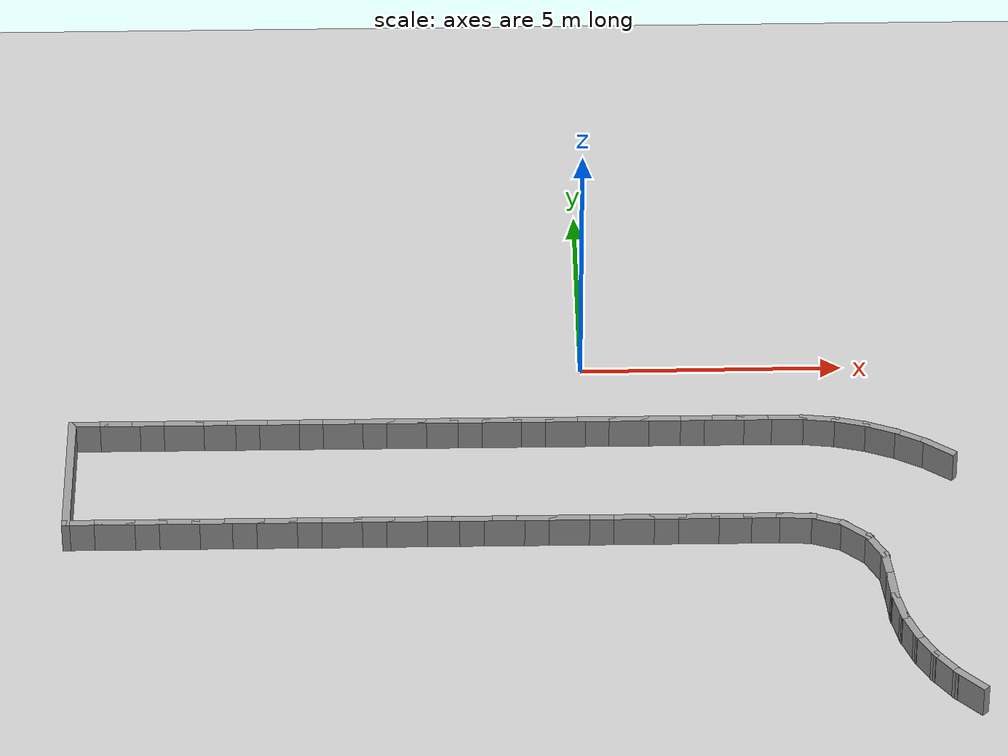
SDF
<sdf version="1.7">
 <world name="default">
  <model name="ground_plane">
   <static>1</static>
   <link name="link">
    <collision name="collision">
     <geometry><plane><normal>0 0 1</normal><size>100 100</size></plane></geometry>
     <surface><friction><ode><mu>100</mu><mu2>50</mu2></ode></friction></surface>
    </collision>
    <visual name="visual">
     <cast_shadows>0</cast_shadows>
     <geometry><plane><normal>0 0 1</normal><size>100 100</size></plane></geometry>
     <material>
      <script><uri>file://media/materials/scripts/gazebo.material</uri><name>Gazebo/Grey</name></script>
     </material>
    </visual>
   </link>
  </model>
  <model name="rand_turn_13">
   <link name="Wall_0">
    <collision name="Wall_0_Collision">
     <geometry><box><size>0.7500 0.1500 0.6000</size></box></geometry>
     <pose>0 0 0.3000 0 -0 0</pose>
    </collision>
    <visual name="Wall_0_Visual">
     <pose>0 0 0.3000 0 -0 0</pose>
     <geometry><box><size>0.7500 0.1500 0.6000</size></box></geometry>
     <material>
      <script><uri>file://media/materials/scripts/gazebo.material</uri><name>Gazebo/Grey</name></script>
      <ambient>1 1 1 1</ambient>
     </material>
    </visual>
    <pose>-9.3673 -2.2573 0 0 -0 -0.00307</pose>
   </link>
   <link name="Wall_1">
    <collision name="Wall_1_Collision">
     <geometry><box><size>0.7500 0.1500 0.6000</size></box></geometry>
     <pose>0 0 0.3000 0 -0 0</pose>
    </collision>
    <visual name="Wall_1_Visual">
     <pose>0 0 0.3000 0 -0 0</pose>
     <geometry><box><size>0.7500 0.1500 0.6000</size></box></geometry>
     <material>
      <script><uri>file://media/materials/scripts/gazebo.material</uri><name>Gazebo/Grey</name></script>
      <ambient>1 1 1 1</ambient>
     </material>
    </visual>
    <pose>-8.7673 -2.2592 0 0 -0 -0.00307</pose>
   </link>
   <link name="Wall_2">
    <collision name="Wall_2_Collision">
     <geometry><box><size>0.7500 0.1500 0.6000</size></box></geometry>
     <pose>0 0 0.3000 0 -0 0</pose>
    </collision>
    <visual name="Wall_2_Visual">
     <pose>0 0 0.3000 0 -0 0</pose>
     <geometry><box><size>0.7500 0.1500 0.6000</size></box></geometry>
     <material>
      <script><uri>file://media/materials/scripts/gazebo.material</uri><name>Gazebo/Grey</name></script>
      <ambient>1 1 1 1</ambient>
     </material>
    </visual>
    <pose>-8.1673 -2.2610 0 0 -0 -0.00307</pose>
   </link>
   <link name="Wall_3">
    <collision name="Wall_3_Collision">
     <geometry><box><size>0.7500 0.1500 0.6000</size></box></geometry>
     <pose>0 0 0.3000 0 -0 0</pose>
    </collision>
    <visual name="Wall_3_Visual">
     <pose>0 0 0.3000 0 -0 0</pose>
     <geometry><box><size>0.7500 0.1500 0.6000</size></box></geometry>
     <material>
      <script><uri>file://media/materials/scripts/gazebo.material</uri><name>Gazebo/Grey</name></script>
      <ambient>1 1 1 1</ambient>
     </material>
    </visual>
    <pose>-7.5673 -2.2629 0 0 -0 -0.00307</pose>
   </link>
   <link name="Wall_4">
    <collision name="Wall_4_Collision">
     <geometry><box><size>0.7500 0.1500 0.6000</size></box></geometry>
     <pose>0 0 0.3000 0 -0 0</pose>
    </collision>
    <visual name="Wall_4_Visual">
     <pose>0 0 0.3000 0 -0 0</pose>
     <geometry><box><size>0.7500 0.1500 0.6000</size></box></geometry>
     <material>
      <script><uri>file://media/materials/scripts/gazebo.material</uri><name>Gazebo/Grey</name></script>
      <ambient>1 1 1 1</ambient>
     </material>
    </visual>
    <pose>-6.9673 -2.2647 0 0 -0 -0.00307</pose>
   </link>
   <link name="Wall_5">
    <collision name="Wall_5_Collision">
     <geometry><box><size>0.7500 0.1500 0.6000</size></box></geometry>
     <pose>0 0 0.3000 0 -0 0</pose>
    </collision>
    <visual name="Wall_5_Visual">
     <pose>0 0 0.3000 0 -0 0</pose>
     <geometry><box><size>0.7500 0.1500 0.6000</size></box></geometry>
     <material>
      <script><uri>file://media/materials/scripts/gazebo.material</uri><name>Gazebo/Grey</name></script>
      <ambient>1 1 1 1</ambient>
     </material>
    </visual>
    <pose>-6.3673 -2.2665 0 0 -0 -0.00307</pose>
   </link>
   <link name="Wall_6">
    <collision name="Wall_6_Collision">
     <geometry><box><size>0.7500 0.1500 0.6000</size></box></geometry>
     <pose>0 0 0.3000 0 -0 0</pose>
    </collision>
    <visual name="Wall_6_Visual">
     <pose>0 0 0.3000 0 -0 0</pose>
     <geometry><box><size>0.7500 0.1500 0.6000</size></box></geometry>
     <material>
      <script><uri>file://media/materials/scripts/gazebo.material</uri><name>Gazebo/Grey</name></script>
      <ambient>1 1 1 1</ambient>
     </material>
    </visual>
    <pose>-5.7674 -2.2684 0 0 -0 -0.00307</pose>
   </link>
   <link name="Wall_7">
    <collision name="Wall_7_Collision">
     <geometry><box><size>0.7500 0.1500 0.6000</size></box></geometry>
     <pose>0 0 0.3000 0 -0 0</pose>
    </collision>
    <visual name="Wall_7_Visual">
     <pose>0 0 0.3000 0 -0 0</pose>
     <geometry><box><size>0.7500 0.1500 0.6000</size></box></geometry>
     <material>
      <script><uri>file://media/materials/scripts/gazebo.material</uri><name>Gazebo/Grey</name></script>
      <ambient>1 1 1 1</ambient>
     </material>
    </visual>
    <pose>-5.1674 -2.2702 0 0 -0 -0.00307</pose>
   </link>
   <link name="Wall_8">
    <collision name="Wall_8_Collision">
     <geometry><box><size>0.7500 0.1500 0.6000</size></box></geometry>
     <pose>0 0 0.3000 0 -0 0</pose>
    </collision>
    <visual name="Wall_8_Visual">
     <pose>0 0 0.3000 0 -0 0</pose>
     <geometry><box><size>0.7500 0.1500 0.6000</size></box></geometry>
     <material>
      <script><uri>file://media/materials/scripts/gazebo.material</uri><name>Gazebo/Grey</name></script>
      <ambient>1 1 1 1</ambient>
     </material>
    </visual>
    <pose>-4.5674 -2.2721 0 0 -0 -0.00307</pose>
   </link>
   <link name="Wall_9">
    <collision name="Wall_9_Collision">
     <geometry><box><size>0.7500 0.1500 0.6000</size></box></geometry>
     <pose>0 0 0.3000 0 -0 0</pose>
    </collision>
    <visual name="Wall_9_Visual">
     <pose>0 0 0.3000 0 -0 0</pose>
     <geometry><box><size>0.7500 0.1500 0.6000</size></box></geometry>
     <material>
      <script><uri>file://media/materials/scripts/gazebo.material</uri><name>Gazebo/Grey</name></script>
      <ambient>1 1 1 1</ambient>
     </material>
    </visual>
    <pose>-3.9674 -2.2739 0 0 -0 -0.00307</pose>
   </link>
   <link name="Wall_10">
    <collision name="Wall_10_Collision">
     <geometry><box><size>0.7500 0.1500 0.6000</size></box></geometry>
     <pose>0 0 0.3000 0 -0 0</pose>
    </collision>
    <visual name="Wall_10_Visual">
     <pose>0 0 0.3000 0 -0 0</pose>
     <geometry><box><size>0.7500 0.1500 0.6000</size></box></geometry>
     <material>
      <script><uri>file://media/materials/scripts/gazebo.material</uri><name>Gazebo/Grey</name></script>
      <ambient>1 1 1 1</ambient>
     </material>
    </visual>
    <pose>-3.3674 -2.2758 0 0 -0 -0.00307</pose>
   </link>
   <link name="Wall_11">
    <collision name="Wall_11_Collision">
     <geometry><box><size>0.7500 0.1500 0.6000</size></box></geometry>
     <pose>0 0 0.3000 0 -0 0</pose>
    </collision>
    <visual name="Wall_11_Visual">
     <pose>0 0 0.3000 0 -0 0</pose>
     <geometry><box><size>0.7500 0.1500 0.6000</size></box></geometry>
     <material>
      <script><uri>file://media/materials/scripts/gazebo.material</uri><name>Gazebo/Grey</name></script>
      <ambient>1 1 1 1</ambient>
     </material>
    </visual>
    <pose>-2.7674 -2.2776 0 0 -0 -0.00307</pose>
   </link>
   <link name="Wall_12">
    <collision name="Wall_12_Collision">
     <geometry><box><size>0.7500 0.1500 0.6000</size></box></geometry>
     <pose>0 0 0.3000 0 -0 0</pose>
    </collision>
    <visual name="Wall_12_Visual">
     <pose>0 0 0.3000 0 -0 0</pose>
     <geometry><box><size>0.7500 0.1500 0.6000</size></box></geometry>
     <material>
      <script><uri>file://media/materials/scripts/gazebo.material</uri><name>Gazebo/Grey</name></script>
      <ambient>1 1 1 1</ambient>
     </material>
    </visual>
    <pose>-2.1674 -2.2794 0 0 -0 -0.00307</pose>
   </link>
   <link name="Wall_13">
    <collision name="Wall_13_Collision">
     <geometry><box><size>0.7500 0.1500 0.6000</size></box></geometry>
     <pose>0 0 0.3000 0 -0 0</pose>
    </collision>
    <visual name="Wall_13_Visual">
     <pose>0 0 0.3000 0 -0 0</pose>
     <geometry><box><size>0.7500 0.1500 0.6000</size></box></geometry>
     <material>
      <script><uri>file://media/materials/scripts/gazebo.material</uri><name>Gazebo/Grey</name></script>
      <ambient>1 1 1 1</ambient>
     </material>
    </visual>
    <pose>-1.5674 -2.2813 0 0 -0 -0.00307</pose>
   </link>
   <link name="Wall_14">
    <collision name="Wall_14_Collision">
     <geometry><box><size>0.7500 0.1500 0.6000</size></box></geometry>
     <pose>0 0 0.3000 0 -0 0</pose>
    </collision>
    <visual name="Wall_14_Visual">
     <pose>0 0 0.3000 0 -0 0</pose>
     <geometry><box><size>0.7500 0.1500 0.6000</size></box></geometry>
     <material>
      <script><uri>file://media/materials/scripts/gazebo.material</uri><name>Gazebo/Grey</name></script>
      <ambient>1 1 1 1</ambient>
     </material>
    </visual>
    <pose>-0.9674 -2.2831 0 0 -0 -0.00307</pose>
   </link>
   <link name="Wall_15">
    <collision name="Wall_15_Collision">
     <geometry><box><size>0.7500 0.1500 0.6000</size></box></geometry>
     <pose>0 0 0.3000 0 -0 0</pose>
    </collision>
    <visual name="Wall_15_Visual">
     <pose>0 0 0.3000 0 -0 0</pose>
     <geometry><box><size>0.7500 0.1500 0.6000</size></box></geometry>
     <material>
      <script><uri>file://media/materials/scripts/gazebo.material</uri><name>Gazebo/Grey</name></script>
      <ambient>1 1 1 1</ambient>
     </material>
    </visual>
    <pose>-0.3674 -2.2850 0 0 -0 -0.00307</pose>
   </link>
   <link name="Wall_16">
    <collision name="Wall_16_Collision">
     <geometry><box><size>0.7500 0.1500 0.6000</size></box></geometry>
     <pose>0 0 0.3000 0 -0 0</pose>
    </collision>
    <visual name="Wall_16_Visual">
     <pose>0 0 0.3000 0 -0 0</pose>
     <geometry><box><size>0.7500 0.1500 0.6000</size></box></geometry>
     <material>
      <script><uri>file://media/materials/scripts/gazebo.material</uri><name>Gazebo/Grey</name></script>
      <ambient>1 1 1 1</ambient>
     </material>
    </visual>
    <pose>0.2326 -2.2868 0 0 -0 -0.00307</pose>
   </link>
   <link name="Wall_17">
    <collision name="Wall_17_Collision">
     <geometry><box><size>0.7500 0.1500 0.6000</size></box></geometry>
     <pose>0 0 0.3000 0 -0 0</pose>
    </collision>
    <visual name="Wall_17_Visual">
     <pose>0 0 0.3000 0 -0 0</pose>
     <geometry><box><size>0.7500 0.1500 0.6000</size></box></geometry>
     <material>
      <script><uri>file://media/materials/scripts/gazebo.material</uri><name>Gazebo/Grey</name></script>
      <ambient>1 1 1 1</ambient>
     </material>
    </visual>
    <pose>0.8326 -2.2887 0 0 -0 -0.00307</pose>
   </link>
   <link name="Wall_18">
    <collision name="Wall_18_Collision">
     <geometry><box><size>0.7500 0.1500 0.6000</size></box></geometry>
     <pose>0 0 0.3000 0 -0 0</pose>
    </collision>
    <visual name="Wall_18_Visual">
     <pose>0 0 0.3000 0 -0 0</pose>
     <geometry><box><size>0.7500 0.1500 0.6000</size></box></geometry>
     <material>
      <script><uri>file://media/materials/scripts/gazebo.material</uri><name>Gazebo/Grey</name></script>
      <ambient>1 1 1 1</ambient>
     </material>
    </visual>
    <pose>1.4326 -2.2905 0 0 -0 -0.00307</pose>
   </link>
   <link name="Wall_19">
    <collision name="Wall_19_Collision">
     <geometry><box><size>0.7500 0.1500 0.6000</size></box></geometry>
     <pose>0 0 0.3000 0 -0 0</pose>
    </collision>
    <visual name="Wall_19_Visual">
     <pose>0 0 0.3000 0 -0 0</pose>
     <geometry><box><size>0.7500 0.1500 0.6000</size></box></geometry>
     <material>
      <script><uri>file://media/materials/scripts/gazebo.material</uri><name>Gazebo/Grey</name></script>
      <ambient>1 1 1 1</ambient>
     </material>
    </visual>
    <pose>2.0326 -2.2923 0 0 -0 -0.00307</pose>
   </link>
   <link name="Wall_20">
    <collision name="Wall_20_Collision">
     <geometry><box><size>0.7500 0.1500 0.6000</size></box></geometry>
     <pose>0 0 0.3000 0 -0 0</pose>
    </collision>
    <visual name="Wall_20_Visual">
     <pose>0 0 0.3000 0 -0 0</pose>
     <geometry><box><size>0.7500 0.1500 0.6000</size></box></geometry>
     <material>
      <script><uri>file://media/materials/scripts/gazebo.material</uri><name>Gazebo/Grey</name></script>
      <ambient>1 1 1 1</ambient>
     </material>
    </visual>
    <pose>2.6326 -2.2942 0 0 -0 -0.00307</pose>
   </link>
   <link name="Wall_21">
    <collision name="Wall_21_Collision">
     <geometry><box><size>0.7500 0.1500 0.6000</size></box></geometry>
     <pose>0 0 0.3000 0 -0 0</pose>
    </collision>
    <visual name="Wall_21_Visual">
     <pose>0 0 0.3000 0 -0 0</pose>
     <geometry><box><size>0.7500 0.1500 0.6000</size></box></geometry>
     <material>
      <script><uri>file://media/materials/scripts/gazebo.material</uri><name>Gazebo/Grey</name></script>
      <ambient>1 1 1 1</ambient>
     </material>
    </visual>
    <pose>3.2326 -2.2960 0 0 -0 -0.00307</pose>
   </link>
   <link name="Wall_22">
    <collision name="Wall_22_Collision">
     <geometry><box><size>0.7499 0.1500 0.6000</size></box></geometry>
     <pose>0 0 0.3000 0 -0 0</pose>
    </collision>
    <visual name="Wall_22_Visual">
     <pose>0 0 0.3000 0 -0 0</pose>
     <geometry><box><size>0.7499 0.1500 0.6000</size></box></geometry>
     <material>
      <script><uri>file://media/materials/scripts/gazebo.material</uri><name>Gazebo/Grey</name></script>
      <ambient>1 1 1 1</ambient>
     </material>
    </visual>
    <pose>3.8325 -2.3028 0 0 -0 -0.01951</pose>
   </link>
   <link name="Wall_23">
    <collision name="Wall_23_Collision">
     <geometry><box><size>0.7496 0.1500 0.6000</size></box></geometry>
     <pose>0 0 0.3000 0 -0 0</pose>
    </collision>
    <visual name="Wall_23_Visual">
     <pose>0 0 0.3000 0 -0 0</pose>
     <geometry><box><size>0.7496 0.1500 0.6000</size></box></geometry>
     <material>
      <script><uri>file://media/materials/scripts/gazebo.material</uri><name>Gazebo/Grey</name></script>
      <ambient>1 1 1 1</ambient>
     </material>
    </visual>
    <pose>4.4295 -2.3487 0 0 -0 -0.13390</pose>
   </link>
   <link name="Wall_24">
    <collision name="Wall_24_Collision">
     <geometry><box><size>0.7496 0.1500 0.6000</size></box></geometry>
     <pose>0 0 0.3000 0 -0 0</pose>
    </collision>
    <visual name="Wall_24_Visual">
     <pose>0 0 0.3000 0 -0 0</pose>
     <geometry><box><size>0.7496 0.1500 0.6000</size></box></geometry>
     <material>
      <script><uri>file://media/materials/scripts/gazebo.material</uri><name>Gazebo/Grey</name></script>
      <ambient>1 1 1 1</ambient>
     </material>
    </visual>
    <pose>5.0159 -2.4671 0 0 -0 -0.26449</pose>
   </link>
   <link name="Wall_25">
    <collision name="Wall_25_Collision">
     <geometry><box><size>0.7496 0.1500 0.6000</size></box></geometry>
     <pose>0 0 0.3000 0 -0 0</pose>
    </collision>
    <visual name="Wall_25_Visual">
     <pose>0 0 0.3000 0 -0 0</pose>
     <geometry><box><size>0.7496 0.1500 0.6000</size></box></geometry>
     <material>
      <script><uri>file://media/materials/scripts/gazebo.material</uri><name>Gazebo/Grey</name></script>
      <ambient>1 1 1 1</ambient>
     </material>
    </visual>
    <pose>5.5820 -2.6608 0 0 -0 -0.39508</pose>
   </link>
   <link name="Wall_26">
    <collision name="Wall_26_Collision">
     <geometry><box><size>0.7495 0.1500 0.6000</size></box></geometry>
     <pose>0 0 0.3000 0 -0 0</pose>
    </collision>
    <visual name="Wall_26_Visual">
     <pose>0 0 0.3000 0 -0 0</pose>
     <geometry><box><size>0.7495 0.1500 0.6000</size></box></geometry>
     <material>
      <script><uri>file://media/materials/scripts/gazebo.material</uri><name>Gazebo/Grey</name></script>
      <ambient>1 1 1 1</ambient>
     </material>
    </visual>
    <pose>6.1180 -2.9266 0 0 -0 -0.52568</pose>
   </link>
   <link name="Wall_27">
    <collision name="Wall_27_Collision">
     <geometry><box><size>0.7495 0.1500 0.6000</size></box></geometry>
     <pose>0 0 0.3000 0 -0 0</pose>
    </collision>
    <visual name="Wall_27_Visual">
     <pose>0 0 0.3000 0 -0 0</pose>
     <geometry><box><size>0.7495 0.1500 0.6000</size></box></geometry>
     <material>
      <script><uri>file://media/materials/scripts/gazebo.material</uri><name>Gazebo/Grey</name></script>
      <ambient>1 1 1 1</ambient>
     </material>
    </visual>
    <pose>6.6148 -3.2600 0 0 -0 -0.65627</pose>
   </link>
   <link name="Wall_53">
    <collision name="Wall_53_Collision">
     <geometry><box><size>0.7500 0.1500 0.6000</size></box></geometry>
     <pose>0 0 0.3000 0 -0 0</pose>
    </collision>
    <visual name="Wall_53_Visual">
     <pose>0 0 0.3000 0 -0 0</pose>
     <geometry><box><size>0.7500 0.1500 0.6000</size></box></geometry>
     <material>
      <script><uri>file://media/materials/scripts/gazebo.material</uri><name>Gazebo/Grey</name></script>
      <ambient>1 1 1 1</ambient>
     </material>
    </visual>
    <pose>-9.3765 -5.2283 0 0 -0 -0.00307</pose>
   </link>
   <link name="Wall_54">
    <collision name="Wall_54_Collision">
     <geometry><box><size>0.7500 0.1500 0.6000</size></box></geometry>
     <pose>0 0 0.3000 0 -0 0</pose>
    </collision>
    <visual name="Wall_54_Visual">
     <pose>0 0 0.3000 0 -0 0</pose>
     <geometry><box><size>0.7500 0.1500 0.6000</size></box></geometry>
     <material>
      <script><uri>file://media/materials/scripts/gazebo.material</uri><name>Gazebo/Grey</name></script>
      <ambient>1 1 1 1</ambient>
     </material>
    </visual>
    <pose>-8.7765 -5.2302 0 0 -0 -0.00307</pose>
   </link>
   <link name="Wall_55">
    <collision name="Wall_55_Collision">
     <geometry><box><size>0.7500 0.1500 0.6000</size></box></geometry>
     <pose>0 0 0.3000 0 -0 0</pose>
    </collision>
    <visual name="Wall_55_Visual">
     <pose>0 0 0.3000 0 -0 0</pose>
     <geometry><box><size>0.7500 0.1500 0.6000</size></box></geometry>
     <material>
      <script><uri>file://media/materials/scripts/gazebo.material</uri><name>Gazebo/Grey</name></script>
      <ambient>1 1 1 1</ambient>
     </material>
    </visual>
    <pose>-8.1765 -5.2320 0 0 -0 -0.00307</pose>
   </link>
   <link name="Wall_56">
    <collision name="Wall_56_Collision">
     <geometry><box><size>0.7500 0.1500 0.6000</size></box></geometry>
     <pose>0 0 0.3000 0 -0 0</pose>
    </collision>
    <visual name="Wall_56_Visual">
     <pose>0 0 0.3000 0 -0 0</pose>
     <geometry><box><size>0.7500 0.1500 0.6000</size></box></geometry>
     <material>
      <script><uri>file://media/materials/scripts/gazebo.material</uri><name>Gazebo/Grey</name></script>
      <ambient>1 1 1 1</ambient>
     </material>
    </visual>
    <pose>-7.5765 -5.2339 0 0 -0 -0.00307</pose>
   </link>
   <link name="Wall_57">
    <collision name="Wall_57_Collision">
     <geometry><box><size>0.7500 0.1500 0.6000</size></box></geometry>
     <pose>0 0 0.3000 0 -0 0</pose>
    </collision>
    <visual name="Wall_57_Visual">
     <pose>0 0 0.3000 0 -0 0</pose>
     <geometry><box><size>0.7500 0.1500 0.6000</size></box></geometry>
     <material>
      <script><uri>file://media/materials/scripts/gazebo.material</uri><name>Gazebo/Grey</name></script>
      <ambient>1 1 1 1</ambient>
     </material>
    </visual>
    <pose>-6.9765 -5.2357 0 0 -0 -0.00307</pose>
   </link>
   <link name="Wall_58">
    <collision name="Wall_58_Collision">
     <geometry><box><size>0.7500 0.1500 0.6000</size></box></geometry>
     <pose>0 0 0.3000 0 -0 0</pose>
    </collision>
    <visual name="Wall_58_Visual">
     <pose>0 0 0.3000 0 -0 0</pose>
     <geometry><box><size>0.7500 0.1500 0.6000</size></box></geometry>
     <material>
      <script><uri>file://media/materials/scripts/gazebo.material</uri><name>Gazebo/Grey</name></script>
      <ambient>1 1 1 1</ambient>
     </material>
    </visual>
    <pose>-6.3765 -5.2375 0 0 -0 -0.00307</pose>
   </link>
   <link name="Wall_59">
    <collision name="Wall_59_Collision">
     <geometry><box><size>0.7500 0.1500 0.6000</size></box></geometry>
     <pose>0 0 0.3000 0 -0 0</pose>
    </collision>
    <visual name="Wall_59_Visual">
     <pose>0 0 0.3000 0 -0 0</pose>
     <geometry><box><size>0.7500 0.1500 0.6000</size></box></geometry>
     <material>
      <script><uri>file://media/materials/scripts/gazebo.material</uri><name>Gazebo/Grey</name></script>
      <ambient>1 1 1 1</ambient>
     </material>
    </visual>
    <pose>-5.7765 -5.2394 0 0 -0 -0.00307</pose>
   </link>
   <link name="Wall_60">
    <collision name="Wall_60_Collision">
     <geometry><box><size>0.7500 0.1500 0.6000</size></box></geometry>
     <pose>0 0 0.3000 0 -0 0</pose>
    </collision>
    <visual name="Wall_60_Visual">
     <pose>0 0 0.3000 0 -0 0</pose>
     <geometry><box><size>0.7500 0.1500 0.6000</size></box></geometry>
     <material>
      <script><uri>file://media/materials/scripts/gazebo.material</uri><name>Gazebo/Grey</name></script>
      <ambient>1 1 1 1</ambient>
     </material>
    </visual>
    <pose>-5.1765 -5.2412 0 0 -0 -0.00307</pose>
   </link>
   <link name="Wall_61">
    <collision name="Wall_61_Collision">
     <geometry><box><size>0.7500 0.1500 0.6000</size></box></geometry>
     <pose>0 0 0.3000 0 -0 0</pose>
    </collision>
    <visual name="Wall_61_Visual">
     <pose>0 0 0.3000 0 -0 0</pose>
     <geometry><box><size>0.7500 0.1500 0.6000</size></box></geometry>
     <material>
      <script><uri>file://media/materials/scripts/gazebo.material</uri><name>Gazebo/Grey</name></script>
      <ambient>1 1 1 1</ambient>
     </material>
    </visual>
    <pose>-4.5765 -5.2431 0 0 -0 -0.00307</pose>
   </link>
   <link name="Wall_62">
    <collision name="Wall_62_Collision">
     <geometry><box><size>0.7500 0.1500 0.6000</size></box></geometry>
     <pose>0 0 0.3000 0 -0 0</pose>
    </collision>
    <visual name="Wall_62_Visual">
     <pose>0 0 0.3000 0 -0 0</pose>
     <geometry><box><size>0.7500 0.1500 0.6000</size></box></geometry>
     <material>
      <script><uri>file://media/materials/scripts/gazebo.material</uri><name>Gazebo/Grey</name></script>
      <ambient>1 1 1 1</ambient>
     </material>
    </visual>
    <pose>-3.9765 -5.2449 0 0 -0 -0.00307</pose>
   </link>
   <link name="Wall_63">
    <collision name="Wall_63_Collision">
     <geometry><box><size>0.7500 0.1500 0.6000</size></box></geometry>
     <pose>0 0 0.3000 0 -0 0</pose>
    </collision>
    <visual name="Wall_63_Visual">
     <pose>0 0 0.3000 0 -0 0</pose>
     <geometry><box><size>0.7500 0.1500 0.6000</size></box></geometry>
     <material>
      <script><uri>file://media/materials/scripts/gazebo.material</uri><name>Gazebo/Grey</name></script>
      <ambient>1 1 1 1</ambient>
     </material>
    </visual>
    <pose>-3.3765 -5.2468 0 0 -0 -0.00307</pose>
   </link>
   <link name="Wall_64">
    <collision name="Wall_64_Collision">
     <geometry><box><size>0.7500 0.1500 0.6000</size></box></geometry>
     <pose>0 0 0.3000 0 -0 0</pose>
    </collision>
    <visual name="Wall_64_Visual">
     <pose>0 0 0.3000 0 -0 0</pose>
     <geometry><box><size>0.7500 0.1500 0.6000</size></box></geometry>
     <material>
      <script><uri>file://media/materials/scripts/gazebo.material</uri><name>Gazebo/Grey</name></script>
      <ambient>1 1 1 1</ambient>
     </material>
    </visual>
    <pose>-2.7765 -5.2486 0 0 -0 -0.00307</pose>
   </link>
   <link name="Wall_65">
    <collision name="Wall_65_Collision">
     <geometry><box><size>0.7500 0.1500 0.6000</size></box></geometry>
     <pose>0 0 0.3000 0 -0 0</pose>
    </collision>
    <visual name="Wall_65_Visual">
     <pose>0 0 0.3000 0 -0 0</pose>
     <geometry><box><size>0.7500 0.1500 0.6000</size></box></geometry>
     <material>
      <script><uri>file://media/materials/scripts/gazebo.material</uri><name>Gazebo/Grey</name></script>
      <ambient>1 1 1 1</ambient>
     </material>
    </visual>
    <pose>-2.1765 -5.2504 0 0 -0 -0.00307</pose>
   </link>
   <link name="Wall_66">
    <collision name="Wall_66_Collision">
     <geometry><box><size>0.7500 0.1500 0.6000</size></box></geometry>
     <pose>0 0 0.3000 0 -0 0</pose>
    </collision>
    <visual name="Wall_66_Visual">
     <pose>0 0 0.3000 0 -0 0</pose>
     <geometry><box><size>0.7500 0.1500 0.6000</size></box></geometry>
     <material>
      <script><uri>file://media/materials/scripts/gazebo.material</uri><name>Gazebo/Grey</name></script>
      <ambient>1 1 1 1</ambient>
     </material>
    </visual>
    <pose>-1.5765 -5.2523 0 0 -0 -0.00307</pose>
   </link>
   <link name="Wall_67">
    <collision name="Wall_67_Collision">
     <geometry><box><size>0.7500 0.1500 0.6000</size></box></geometry>
     <pose>0 0 0.3000 0 -0 0</pose>
    </collision>
    <visual name="Wall_67_Visual">
     <pose>0 0 0.3000 0 -0 0</pose>
     <geometry><box><size>0.7500 0.1500 0.6000</size></box></geometry>
     <material>
      <script><uri>file://media/materials/scripts/gazebo.material</uri><name>Gazebo/Grey</name></script>
      <ambient>1 1 1 1</ambient>
     </material>
    </visual>
    <pose>-0.9765 -5.2541 0 0 -0 -0.00307</pose>
   </link>
   <link name="Wall_68">
    <collision name="Wall_68_Collision">
     <geometry><box><size>0.7500 0.1500 0.6000</size></box></geometry>
     <pose>0 0 0.3000 0 -0 0</pose>
    </collision>
    <visual name="Wall_68_Visual">
     <pose>0 0 0.3000 0 -0 0</pose>
     <geometry><box><size>0.7500 0.1500 0.6000</size></box></geometry>
     <material>
      <script><uri>file://media/materials/scripts/gazebo.material</uri><name>Gazebo/Grey</name></script>
      <ambient>1 1 1 1</ambient>
     </material>
    </visual>
    <pose>-0.3765 -5.2560 0 0 -0 -0.00307</pose>
   </link>
   <link name="Wall_69">
    <collision name="Wall_69_Collision">
     <geometry><box><size>0.7500 0.1500 0.6000</size></box></geometry>
     <pose>0 0 0.3000 0 -0 0</pose>
    </collision>
    <visual name="Wall_69_Visual">
     <pose>0 0 0.3000 0 -0 0</pose>
     <geometry><box><size>0.7500 0.1500 0.6000</size></box></geometry>
     <material>
      <script><uri>file://media/materials/scripts/gazebo.material</uri><name>Gazebo/Grey</name></script>
      <ambient>1 1 1 1</ambient>
     </material>
    </visual>
    <pose>0.2235 -5.2578 0 0 -0 -0.00307</pose>
   </link>
   <link name="Wall_70">
    <collision name="Wall_70_Collision">
     <geometry><box><size>0.7500 0.1500 0.6000</size></box></geometry>
     <pose>0 0 0.3000 0 -0 0</pose>
    </collision>
    <visual name="Wall_70_Visual">
     <pose>0 0 0.3000 0 -0 0</pose>
     <geometry><box><size>0.7500 0.1500 0.6000</size></box></geometry>
     <material>
      <script><uri>file://media/materials/scripts/gazebo.material</uri><name>Gazebo/Grey</name></script>
      <ambient>1 1 1 1</ambient>
     </material>
    </visual>
    <pose>0.8235 -5.2597 0 0 -0 -0.00307</pose>
   </link>
   <link name="Wall_71">
    <collision name="Wall_71_Collision">
     <geometry><box><size>0.7500 0.1500 0.6000</size></box></geometry>
     <pose>0 0 0.3000 0 -0 0</pose>
    </collision>
    <visual name="Wall_71_Visual">
     <pose>0 0 0.3000 0 -0 0</pose>
     <geometry><box><size>0.7500 0.1500 0.6000</size></box></geometry>
     <material>
      <script><uri>file://media/materials/scripts/gazebo.material</uri><name>Gazebo/Grey</name></script>
      <ambient>1 1 1 1</ambient>
     </material>
    </visual>
    <pose>1.4235 -5.2615 0 0 -0 -0.00307</pose>
   </link>
   <link name="Wall_72">
    <collision name="Wall_72_Collision">
     <geometry><box><size>0.7500 0.1500 0.6000</size></box></geometry>
     <pose>0 0 0.3000 0 -0 0</pose>
    </collision>
    <visual name="Wall_72_Visual">
     <pose>0 0 0.3000 0 -0 0</pose>
     <geometry><box><size>0.7500 0.1500 0.6000</size></box></geometry>
     <material>
      <script><uri>file://media/materials/scripts/gazebo.material</uri><name>Gazebo/Grey</name></script>
      <ambient>1 1 1 1</ambient>
     </material>
    </visual>
    <pose>2.0235 -5.2634 0 0 -0 -0.00307</pose>
   </link>
   <link name="Wall_73">
    <collision name="Wall_73_Collision">
     <geometry><box><size>0.7500 0.1500 0.6000</size></box></geometry>
     <pose>0 0 0.3000 0 -0 0</pose>
    </collision>
    <visual name="Wall_73_Visual">
     <pose>0 0 0.3000 0 -0 0</pose>
     <geometry><box><size>0.7500 0.1500 0.6000</size></box></geometry>
     <material>
      <script><uri>file://media/materials/scripts/gazebo.material</uri><name>Gazebo/Grey</name></script>
      <ambient>1 1 1 1</ambient>
     </material>
    </visual>
    <pose>2.6235 -5.2652 0 0 -0 -0.00307</pose>
   </link>
   <link name="Wall_74">
    <collision name="Wall_74_Collision">
     <geometry><box><size>0.7500 0.1500 0.6000</size></box></geometry>
     <pose>0 0 0.3000 0 -0 0</pose>
    </collision>
    <visual name="Wall_74_Visual">
     <pose>0 0 0.3000 0 -0 0</pose>
     <geometry><box><size>0.7500 0.1500 0.6000</size></box></geometry>
     <material>
      <script><uri>file://media/materials/scripts/gazebo.material</uri><name>Gazebo/Grey</name></script>
      <ambient>1 1 1 1</ambient>
     </material>
    </visual>
    <pose>3.2235 -5.2670 0 0 -0 -0.00307</pose>
   </link>
   <link name="Wall_75">
    <collision name="Wall_75_Collision">
     <geometry><box><size>0.7489 0.1500 0.6000</size></box></geometry>
     <pose>0 0 0.3000 0 -0 0</pose>
    </collision>
    <visual name="Wall_75_Visual">
     <pose>0 0 0.3000 0 -0 0</pose>
     <geometry><box><size>0.7489 0.1500 0.6000</size></box></geometry>
     <material>
      <script><uri>file://media/materials/scripts/gazebo.material</uri><name>Gazebo/Grey</name></script>
      <ambient>1 1 1 1</ambient>
     </material>
    </visual>
    <pose>3.8226 -5.2828 0 0 -0 -0.04953</pose>
   </link>
   <link name="Wall_76">
    <collision name="Wall_76_Collision">
     <geometry><box><size>0.7466 0.1500 0.6000</size></box></geometry>
     <pose>0 0 0.3000 0 -0 0</pose>
    </collision>
    <visual name="Wall_76_Visual">
     <pose>0 0 0.3000 0 -0 0</pose>
     <geometry><box><size>0.7466 0.1500 0.6000</size></box></geometry>
     <material>
      <script><uri>file://media/materials/scripts/gazebo.material</uri><name>Gazebo/Grey</name></script>
      <ambient>1 1 1 1</ambient>
     </material>
    </visual>
    <pose>4.3995 -5.4063 0 0 -0 -0.37285</pose>
   </link>
   <link name="Wall_77">
    <collision name="Wall_77_Collision">
     <geometry><box><size>0.7466 0.1500 0.6000</size></box></geometry>
     <pose>0 0 0.3000 0 -0 0</pose>
    </collision>
    <visual name="Wall_77_Visual">
     <pose>0 0 0.3000 0 -0 0</pose>
     <geometry><box><size>0.7466 0.1500 0.6000</size></box></geometry>
     <material>
      <script><uri>file://media/materials/scripts/gazebo.material</uri><name>Gazebo/Grey</name></script>
      <ambient>1 1 1 1</ambient>
     </material>
    </visual>
    <pose>4.8970 -5.7166 0 0 -0 -0.74266</pose>
   </link>
   <link name="Wall_78">
    <collision name="Wall_78_Collision">
     <geometry><box><size>0.7466 0.1500 0.6000</size></box></geometry>
     <pose>0 0 0.3000 0 -0 0</pose>
    </collision>
    <visual name="Wall_78_Visual">
     <pose>0 0 0.3000 0 -0 0</pose>
     <geometry><box><size>0.7466 0.1500 0.6000</size></box></geometry>
     <material>
      <script><uri>file://media/materials/scripts/gazebo.material</uri><name>Gazebo/Grey</name></script>
      <ambient>1 1 1 1</ambient>
     </material>
    </visual>
    <pose>5.2487 -6.1858 0 0 -0 -1.11240</pose>
   </link>
   <link name="Wall_79">
    <collision name="Wall_79_Collision">
     <geometry><box><size>0.7475 0.1500 0.6000</size></box></geometry>
     <pose>0 0 0.3000 0 -0 0</pose>
    </collision>
    <visual name="Wall_79_Visual">
     <pose>0 0 0.3000 0 -0 0</pose>
     <geometry><box><size>0.7475 0.1500 0.6000</size></box></geometry>
     <material>
      <script><uri>file://media/materials/scripts/gazebo.material</uri><name>Gazebo/Grey</name></script>
      <ambient>1 1 1 1</ambient>
     </material>
    </visual>
    <pose>5.4109 -6.7505 0 0 -0 -1.46936</pose>
   </link>
   <link name="Wall_80">
    <collision name="Wall_80_Collision">
     <geometry><box><size>0.7496 0.1500 0.6000</size></box></geometry>
     <pose>0 0 0.3000 0 -0 0</pose>
    </collision>
    <visual name="Wall_80_Visual">
     <pose>0 0 0.3000 0 -0 0</pose>
     <geometry><box><size>0.7496 0.1500 0.6000</size></box></geometry>
     <material>
      <script><uri>file://media/materials/scripts/gazebo.material</uri><name>Gazebo/Grey</name></script>
      <ambient>1 1 1 1</ambient>
     </material>
    </visual>
    <pose>5.4666 -7.3465 0 0 -0 -1.48596</pose>
   </link>
   <link name="Wall_81">
    <collision name="Wall_81_Collision">
     <geometry><box><size>0.7496 0.1500 0.6000</size></box></geometry>
     <pose>0 0 0.3000 0 -0 0</pose>
    </collision>
    <visual name="Wall_81_Visual">
     <pose>0 0 0.3000 0 -0 0</pose>
     <geometry><box><size>0.7496 0.1500 0.6000</size></box></geometry>
     <material>
      <script><uri>file://media/materials/scripts/gazebo.material</uri><name>Gazebo/Grey</name></script>
      <ambient>1 1 1 1</ambient>
     </material>
    </visual>
    <pose>5.5579 -7.9376 0 0 -0 -1.34929</pose>
   </link>
   <link name="Wall_82">
    <collision name="Wall_82_Collision">
     <geometry><box><size>0.7496 0.1500 0.6000</size></box></geometry>
     <pose>0 0 0.3000 0 -0 0</pose>
    </collision>
    <visual name="Wall_82_Visual">
     <pose>0 0 0.3000 0 -0 0</pose>
     <geometry><box><size>0.7496 0.1500 0.6000</size></box></geometry>
     <material>
      <script><uri>file://media/materials/scripts/gazebo.material</uri><name>Gazebo/Grey</name></script>
      <ambient>1 1 1 1</ambient>
     </material>
    </visual>
    <pose>5.7288 -8.5108 0 0 -0 -1.21262</pose>
   </link>
   <link name="Wall_83">
    <collision name="Wall_83_Collision">
     <geometry><box><size>0.7495 0.1500 0.6000</size></box></geometry>
     <pose>0 0 0.3000 0 -0 0</pose>
    </collision>
    <visual name="Wall_83_Visual">
     <pose>0 0 0.3000 0 -0 0</pose>
     <geometry><box><size>0.7495 0.1500 0.6000</size></box></geometry>
     <material>
      <script><uri>file://media/materials/scripts/gazebo.material</uri><name>Gazebo/Grey</name></script>
      <ambient>1 1 1 1</ambient>
     </material>
    </visual>
    <pose>5.9762 -9.0554 0 0 -0 -1.07607</pose>
   </link>
   <link name="Wall_84">
    <collision name="Wall_84_Collision">
     <geometry><box><size>0.7495 0.1500 0.6000</size></box></geometry>
     <pose>0 0 0.3000 0 -0 0</pose>
    </collision>
    <visual name="Wall_84_Visual">
     <pose>0 0 0.3000 0 -0 0</pose>
     <geometry><box><size>0.7495 0.1500 0.6000</size></box></geometry>
     <material>
      <script><uri>file://media/materials/scripts/gazebo.material</uri><name>Gazebo/Grey</name></script>
      <ambient>1 1 1 1</ambient>
     </material>
    </visual>
    <pose>6.2955 -9.5612 0 0 -0 -0.93952</pose>
   </link>
   <link name="Wall_85">
    <collision name="Wall_85_Collision">
     <geometry><box><size>0.7495 0.1500 0.6000</size></box></geometry>
     <pose>0 0 0.3000 0 -0 0</pose>
    </collision>
    <visual name="Wall_85_Visual">
     <pose>0 0 0.3000 0 -0 0</pose>
     <geometry><box><size>0.7495 0.1500 0.6000</size></box></geometry>
     <material>
      <script><uri>file://media/materials/scripts/gazebo.material</uri><name>Gazebo/Grey</name></script>
      <ambient>1 1 1 1</ambient>
     </material>
    </visual>
    <pose>6.6806 -10.0189 0 0 -0 -0.80298</pose>
   </link>
   <link name="Wall_121">
    <collision name="Wall_121_Collision">
     <geometry><box><size>3.1210 0.1500 0.6000</size></box></geometry>
     <pose>0 0 0.3000 0 -0 0</pose>
    </collision>
    <visual name="Wall_121_Visual">
     <pose>0 0 0.3000 0 -0 0</pose>
     <geometry><box><size>3.1210 0.1500 0.6000</size></box></geometry>
     <material>
      <script><uri>file://media/materials/scripts/gazebo.material</uri><name>Gazebo/Grey</name></script>
      <ambient>1 1 1 1</ambient>
     </material>
    </visual>
    <pose>-9.6719 -3.7419 0 0 -0 1.56772</pose>
   </link>
   <static>1</static>
  </model>
 </world>
</sdf>
